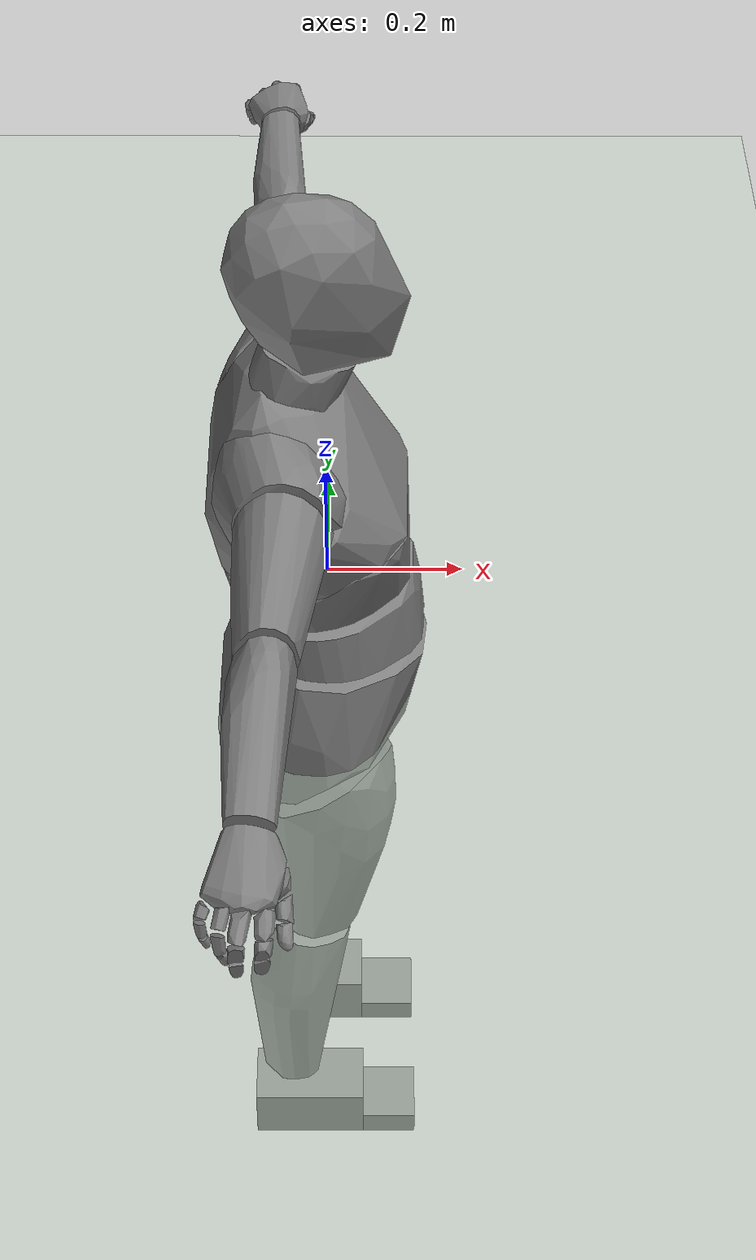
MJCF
<mujoco model="humanoid">
  <compiler coordinate="local"/>
  <statistic extent="2" center="0 0 1"/>
  <option timestep="0.00555"/>
  <default>
    <motor ctrlrange="-1 1" ctrllimited="true"/>
    <geom type="capsule" condim="1" friction="1.0 0.05 0.05" solimp=".9 .99 .003" solref=".015 1"/>
    <joint type="hinge" damping="0.1" stiffness="5" armature=".007" limited="true" solimplimit="0 .99 .01"/>
    <site size=".04" group="3"/>
    <default class="force-torque">
      <site type="box" size=".01 .01 .02" rgba="1 0 0 1"/>
    </default>
    <default class="touch">
      <site type="capsule" rgba="0 0 1 .3"/>
    </default>
  </default>
  <asset>
    <texture type="skybox" builtin="gradient" rgb1=".4 .5 .6" rgb2="0 0 0" width="100" height="100"/>
    <texture builtin="flat" height="1278" mark="cross" markrgb="1 1 1" name="texgeom" random="0.01" rgb1="0.8 0.6 0.4" rgb2="0.8 0.6 0.4" type="cube" width="127"/>
    <texture builtin="checker" height="100" name="texplane" rgb1="0 0 0" rgb2="0.8 0.8 0.8" type="2d" width="100"/>
    <material name="MatPlane" reflectance="0.5" shininess="1" specular="1" texrepeat="60 60" texture="texplane"/>
    <material name="geom" texture="texgeom" texuniform="true"/>
    <mesh file="c151690e-1482-4e43-a277-f6bdd240d634/geom/Pelvis.stl" name="Pelvis_mesh"/>
    <mesh file="c151690e-1482-4e43-a277-f6bdd240d634/geom/L_Hip.stl" name="L_Hip_mesh"/>
    <mesh file="c151690e-1482-4e43-a277-f6bdd240d634/geom/R_Hip.stl" name="R_Hip_mesh"/>
    <mesh file="c151690e-1482-4e43-a277-f6bdd240d634/geom/Torso.stl" name="Torso_mesh"/>
    <mesh file="c151690e-1482-4e43-a277-f6bdd240d634/geom/L_Knee.stl" name="L_Knee_mesh"/>
    <mesh file="c151690e-1482-4e43-a277-f6bdd240d634/geom/R_Knee.stl" name="R_Knee_mesh"/>
    <mesh file="c151690e-1482-4e43-a277-f6bdd240d634/geom/Spine.stl" name="Spine_mesh"/>
    <mesh file="c151690e-1482-4e43-a277-f6bdd240d634/geom/L_Ankle.stl" name="L_Ankle_mesh"/>
    <mesh file="c151690e-1482-4e43-a277-f6bdd240d634/geom/R_Ankle.stl" name="R_Ankle_mesh"/>
    <mesh file="c151690e-1482-4e43-a277-f6bdd240d634/geom/Chest.stl" name="Chest_mesh"/>
    <mesh file="c151690e-1482-4e43-a277-f6bdd240d634/geom/L_Toe.stl" name="L_Toe_mesh"/>
    <mesh file="c151690e-1482-4e43-a277-f6bdd240d634/geom/R_Toe.stl" name="R_Toe_mesh"/>
    <mesh file="c151690e-1482-4e43-a277-f6bdd240d634/geom/Neck.stl" name="Neck_mesh"/>
    <mesh file="c151690e-1482-4e43-a277-f6bdd240d634/geom/L_Thorax.stl" name="L_Thorax_mesh"/>
    <mesh file="c151690e-1482-4e43-a277-f6bdd240d634/geom/R_Thorax.stl" name="R_Thorax_mesh"/>
    <mesh file="c151690e-1482-4e43-a277-f6bdd240d634/geom/Head.stl" name="Head_mesh"/>
    <mesh file="c151690e-1482-4e43-a277-f6bdd240d634/geom/L_Shoulder.stl" name="L_Shoulder_mesh"/>
    <mesh file="c151690e-1482-4e43-a277-f6bdd240d634/geom/R_Shoulder.stl" name="R_Shoulder_mesh"/>
    <mesh file="c151690e-1482-4e43-a277-f6bdd240d634/geom/L_Elbow.stl" name="L_Elbow_mesh"/>
    <mesh file="c151690e-1482-4e43-a277-f6bdd240d634/geom/R_Elbow.stl" name="R_Elbow_mesh"/>
    <mesh file="c151690e-1482-4e43-a277-f6bdd240d634/geom/L_Wrist.stl" name="L_Wrist_mesh"/>
    <mesh file="c151690e-1482-4e43-a277-f6bdd240d634/geom/R_Wrist.stl" name="R_Wrist_mesh"/>
    <mesh file="c151690e-1482-4e43-a277-f6bdd240d634/geom/L_Index1.stl" name="L_Index1_mesh"/>
    <mesh file="c151690e-1482-4e43-a277-f6bdd240d634/geom/L_Index2.stl" name="L_Index2_mesh"/>
    <mesh file="c151690e-1482-4e43-a277-f6bdd240d634/geom/L_Index3.stl" name="L_Index3_mesh"/>
    <mesh file="c151690e-1482-4e43-a277-f6bdd240d634/geom/L_Middle1.stl" name="L_Middle1_mesh"/>
    <mesh file="c151690e-1482-4e43-a277-f6bdd240d634/geom/L_Middle2.stl" name="L_Middle2_mesh"/>
    <mesh file="c151690e-1482-4e43-a277-f6bdd240d634/geom/L_Middle3.stl" name="L_Middle3_mesh"/>
    <mesh file="c151690e-1482-4e43-a277-f6bdd240d634/geom/L_Pinky1.stl" name="L_Pinky1_mesh"/>
    <mesh file="c151690e-1482-4e43-a277-f6bdd240d634/geom/L_Pinky2.stl" name="L_Pinky2_mesh"/>
    <mesh file="c151690e-1482-4e43-a277-f6bdd240d634/geom/L_Pinky3.stl" name="L_Pinky3_mesh"/>
    <mesh file="c151690e-1482-4e43-a277-f6bdd240d634/geom/L_Ring1.stl" name="L_Ring1_mesh"/>
    <mesh file="c151690e-1482-4e43-a277-f6bdd240d634/geom/L_Ring2.stl" name="L_Ring2_mesh"/>
    <mesh file="c151690e-1482-4e43-a277-f6bdd240d634/geom/L_Ring3.stl" name="L_Ring3_mesh"/>
    <mesh file="c151690e-1482-4e43-a277-f6bdd240d634/geom/L_Thumb1.stl" name="L_Thumb1_mesh"/>
    <mesh file="c151690e-1482-4e43-a277-f6bdd240d634/geom/L_Thumb2.stl" name="L_Thumb2_mesh"/>
    <mesh file="c151690e-1482-4e43-a277-f6bdd240d634/geom/L_Thumb3.stl" name="L_Thumb3_mesh"/>
    <mesh file="c151690e-1482-4e43-a277-f6bdd240d634/geom/R_Index1.stl" name="R_Index1_mesh"/>
    <mesh file="c151690e-1482-4e43-a277-f6bdd240d634/geom/R_Index2.stl" name="R_Index2_mesh"/>
    <mesh file="c151690e-1482-4e43-a277-f6bdd240d634/geom/R_Index3.stl" name="R_Index3_mesh"/>
    <mesh file="c151690e-1482-4e43-a277-f6bdd240d634/geom/R_Middle1.stl" name="R_Middle1_mesh"/>
    <mesh file="c151690e-1482-4e43-a277-f6bdd240d634/geom/R_Middle2.stl" name="R_Middle2_mesh"/>
    <mesh file="c151690e-1482-4e43-a277-f6bdd240d634/geom/R_Middle3.stl" name="R_Middle3_mesh"/>
    <mesh file="c151690e-1482-4e43-a277-f6bdd240d634/geom/R_Pinky1.stl" name="R_Pinky1_mesh"/>
    <mesh file="c151690e-1482-4e43-a277-f6bdd240d634/geom/R_Pinky2.stl" name="R_Pinky2_mesh"/>
    <mesh file="c151690e-1482-4e43-a277-f6bdd240d634/geom/R_Pinky3.stl" name="R_Pinky3_mesh"/>
    <mesh file="c151690e-1482-4e43-a277-f6bdd240d634/geom/R_Ring1.stl" name="R_Ring1_mesh"/>
    <mesh file="c151690e-1482-4e43-a277-f6bdd240d634/geom/R_Ring2.stl" name="R_Ring2_mesh"/>
    <mesh file="c151690e-1482-4e43-a277-f6bdd240d634/geom/R_Ring3.stl" name="R_Ring3_mesh"/>
    <mesh file="c151690e-1482-4e43-a277-f6bdd240d634/geom/R_Thumb1.stl" name="R_Thumb1_mesh"/>
    <mesh file="c151690e-1482-4e43-a277-f6bdd240d634/geom/R_Thumb2.stl" name="R_Thumb2_mesh"/>
    <mesh file="c151690e-1482-4e43-a277-f6bdd240d634/geom/R_Thumb3.stl" name="R_Thumb3_mesh"/>
  </asset>
  <worldbody>
    <light cutoff="100" diffuse="1 1 1" dir="-0 0 -1.3" directional="true" exponent="1" pos="0 0 1.3" specular=".1 .1 .1"/>
    <geom conaffinity="1" condim="3" name="floor" pos="0 0 0" rgba="0.8 0.9 0.8 1" size="100 100 .2" type="plane" material="MatPlane"/>
    <body name="Pelvis" pos="-0.0018 -0.2233 0.0282" quat="1.0000 0.0000 0.0000 0.0000">
      <freejoint name="Pelvis"/>
      <geom type="mesh" mesh="Pelvis_mesh" density="1000" contype="1" conaffinity="1"/>
      <body name="L_Hip" pos="-0.0068 0.0695 -0.0914" quat="1.0000 0.0000 0.0000 0.0000">
        <joint name="L_Hip_z" type="hinge" pos="0 0 0" axis="0 0 1" stiffness="500" damping="50" armature="0.02" range="-180.0000 180.0000"/>
        <joint name="L_Hip_y" type="hinge" pos="0 0 0" axis="0 1 0" stiffness="500" damping="50" armature="0.02" range="-180.0000 180.0000"/>
        <joint name="L_Hip_x" type="hinge" pos="0 0 0" axis="1 0 0" stiffness="500" damping="50" armature="0.02" range="-180.0000 180.0000"/>
        <geom type="mesh" mesh="L_Hip_mesh" density="1000" contype="1" conaffinity="1"/>
        <body name="L_Knee" pos="-0.0045 0.0343 -0.3752" quat="1.0000 0.0000 0.0000 0.0000">
          <joint name="L_Knee_z" type="hinge" pos="0 0 0" axis="0 0 1" stiffness="500" damping="50" armature="0.02" range="-180.0000 180.0000"/>
          <joint name="L_Knee_y" type="hinge" pos="0 0 0" axis="0 1 0" stiffness="500" damping="50" armature="0.02" range="-180.0000 180.0000"/>
          <joint name="L_Knee_x" type="hinge" pos="0 0 0" axis="1 0 0" stiffness="500" damping="50" armature="0.02" range="-180.0000 180.0000"/>
          <geom type="mesh" mesh="L_Knee_mesh" density="1000" contype="1" conaffinity="1"/>
          <body name="L_Ankle" pos="-0.0437 -0.0136 -0.398" quat="1.0000 0.0000 0.0000 0.0000">
            <joint name="L_Ankle_z" type="hinge" pos="0 0 0" axis="0 0 1" stiffness="400" damping="40" armature="0.01" range="-180.0000 180.0000"/>
            <joint name="L_Ankle_y" type="hinge" pos="0 0 0" axis="0 1 0" stiffness="400" damping="40" armature="0.01" range="-180.0000 180.0000"/>
            <joint name="L_Ankle_x" type="hinge" pos="0 0 0" axis="1 0 0" stiffness="400" damping="40" armature="0.01" range="-180.0000 180.0000"/>
            <geom density="449.07151" type="box" pos="0.0242 0.0233 -0.0239" size="0.085 0.0483 0.0464" quat="1.0000 0.0000 0.0000 0.0000"/>
            <body name="L_Toe" pos="0.1193 0.0264 -0.0558" quat="1.0000 0.0000 0.0000 0.0000">
              <joint name="L_Toe_z" type="hinge" pos="0 0 0" axis="0 0 1" stiffness="200" damping="20" armature="0.02" range="-180.0000 180.0000"/>
              <joint name="L_Toe_y" type="hinge" pos="0 0 0" axis="0 1 0" stiffness="200" damping="20" armature="0.02" range="-180.0000 180.0000"/>
              <joint name="L_Toe_x" type="hinge" pos="0 0 0" axis="1 0 0" stiffness="200" damping="20" armature="0.02" range="-180.0000 180.0000"/>
              <geom density="423.206891" type="box" pos="0.0248 -0.0030 0.0055" size="0.0496 0.0478 0.02" quat="1.0000 0.0000 0.0000 0.0000"/>
            </body>
          </body>
        </body>
      </body>
      <body name="R_Hip" pos="-0.0043 -0.0677 -0.0905" quat="1.0000 0.0000 0.0000 0.0000">
        <joint name="R_Hip_z" type="hinge" pos="0 0 0" axis="0 0 1" stiffness="500" damping="50" armature="0.02" range="-180.0000 180.0000"/>
        <joint name="R_Hip_y" type="hinge" pos="0 0 0" axis="0 1 0" stiffness="500" damping="50" armature="0.02" range="-180.0000 180.0000"/>
        <joint name="R_Hip_x" type="hinge" pos="0 0 0" axis="1 0 0" stiffness="500" damping="50" armature="0.02" range="-180.0000 180.0000"/>
        <geom type="mesh" mesh="R_Hip_mesh" density="1000" contype="1" conaffinity="1"/>
        <body name="R_Knee" pos="-0.0089 -0.0383 -0.3826" quat="1.0000 0.0000 0.0000 0.0000">
          <joint name="R_Knee_z" type="hinge" pos="0 0 0" axis="0 0 1" stiffness="500" damping="50" armature="0.02" range="-180.0000 180.0000"/>
          <joint name="R_Knee_y" type="hinge" pos="0 0 0" axis="0 1 0" stiffness="500" damping="50" armature="0.02" range="-180.0000 180.0000"/>
          <joint name="R_Knee_x" type="hinge" pos="0 0 0" axis="1 0 0" stiffness="500" damping="50" armature="0.02" range="-180.0000 180.0000"/>
          <geom type="mesh" mesh="R_Knee_mesh" density="1000" contype="1" conaffinity="1"/>
          <body name="R_Ankle" pos="-0.0423 0.0158 -0.3984" quat="1.0000 0.0000 0.0000 0.0000">
            <joint name="R_Ankle_z" type="hinge" pos="0 0 0" axis="0 0 1" stiffness="400" damping="40" armature="0.01" range="-180.0000 180.0000"/>
            <joint name="R_Ankle_y" type="hinge" pos="0 0 0" axis="0 1 0" stiffness="400" damping="40" armature="0.01" range="-180.0000 180.0000"/>
            <joint name="R_Ankle_x" type="hinge" pos="0 0 0" axis="1 0 0" stiffness="400" damping="40" armature="0.01" range="-180.0000 180.0000"/>
            <geom density="434.701474" type="box" pos="0.0256 -0.0212 -0.0174" size="0.0865 0.0483 0.0478" quat="1.0000 0.0000 0.0000 0.0000"/>
            <body name="R_Toe" pos="0.1233 -0.0254 -0.0481" quat="1.0000 0.0000 0.0000 0.0000">
              <joint name="R_Toe_z" type="hinge" pos="0 0 0" axis="0 0 1" stiffness="200" damping="20" armature="0.02" range="-180.0000 180.0000"/>
              <joint name="R_Toe_y" type="hinge" pos="0 0 0" axis="0 1 0" stiffness="200" damping="20" armature="0.02" range="-180.0000 180.0000"/>
              <joint name="R_Toe_x" type="hinge" pos="0 0 0" axis="1 0 0" stiffness="200" damping="20" armature="0.02" range="-180.0000 180.0000"/>
              <geom density="407.383947" type="box" pos="0.0227 0.0042 0.0045" size="0.0493 0.0479 0.0216" quat="1.0000 0.0000 0.0000 0.0000"/>
            </body>
          </body>
        </body>
      </body>
      <body name="Torso" pos="-0.0267 -0.0025 0.109" quat="1.0000 0.0000 0.0000 0.0000">
        <joint name="Torso_z" type="hinge" pos="0 0 0" axis="0 0 1" stiffness="1000" damping="100" armature="0.02" range="-180.0000 180.0000"/>
        <joint name="Torso_y" type="hinge" pos="0 0 0" axis="0 1 0" stiffness="1000" damping="100" armature="0.02" range="-180.0000 180.0000"/>
        <joint name="Torso_x" type="hinge" pos="0 0 0" axis="1 0 0" stiffness="1000" damping="100" armature="0.02" range="-180.0000 180.0000"/>
        <geom type="mesh" mesh="Torso_mesh" density="1000" contype="1" conaffinity="1"/>
        <body name="Spine" pos="0.0011 0.0055 0.1352" quat="1.0000 0.0000 0.0000 0.0000">
          <joint name="Spine_z" type="hinge" pos="0 0 0" axis="0 0 1" stiffness="1000" damping="100" armature="0.02" range="-180.0000 180.0000"/>
          <joint name="Spine_y" type="hinge" pos="0 0 0" axis="0 1 0" stiffness="1000" damping="100" armature="0.02" range="-180.0000 180.0000"/>
          <joint name="Spine_x" type="hinge" pos="0 0 0" axis="1 0 0" stiffness="1000" damping="100" armature="0.02" range="-180.0000 180.0000"/>
          <geom type="mesh" mesh="Spine_mesh" density="1000" contype="1" conaffinity="1"/>
          <body name="Chest" pos="0.0254 0.0015 0.0529" quat="1.0000 0.0000 0.0000 0.0000">
            <joint name="Chest_z" type="hinge" pos="0 0 0" axis="0 0 1" stiffness="1000" damping="100" armature="0.02" range="-180.0000 180.0000"/>
            <joint name="Chest_y" type="hinge" pos="0 0 0" axis="0 1 0" stiffness="1000" damping="100" armature="0.02" range="-180.0000 180.0000"/>
            <joint name="Chest_x" type="hinge" pos="0 0 0" axis="1 0 0" stiffness="1000" damping="100" armature="0.02" range="-180.0000 180.0000"/>
            <geom type="mesh" mesh="Chest_mesh" density="1000" contype="1" conaffinity="1"/>
            <body name="Neck" pos="-0.0429 -0.0028 0.2139" quat="1.0000 0.0000 0.0000 0.0000">
              <joint name="Neck_z" type="hinge" pos="0 0 0" axis="0 0 1" stiffness="100" damping="10" armature="0.02" range="-180.0000 180.0000"/>
              <joint name="Neck_y" type="hinge" pos="0 0 0" axis="0 1 0" stiffness="100" damping="10" armature="0.02" range="-180.0000 180.0000"/>
              <joint name="Neck_x" type="hinge" pos="0 0 0" axis="1 0 0" stiffness="100" damping="10" armature="0.02" range="-180.0000 180.0000"/>
              <geom type="mesh" mesh="Neck_mesh" density="1000" contype="1" conaffinity="1"/>
              <body name="Head" pos="0.0513 0.0052 0.065" quat="1.0000 0.0000 0.0000 0.0000">
                <joint name="Head_z" type="hinge" pos="0 0 0" axis="0 0 1" stiffness="100" damping="10" armature="0.02" range="-180.0000 180.0000"/>
                <joint name="Head_y" type="hinge" pos="0 0 0" axis="0 1 0" stiffness="100" damping="10" armature="0.02" range="-180.0000 180.0000"/>
                <joint name="Head_x" type="hinge" pos="0 0 0" axis="1 0 0" stiffness="100" damping="10" armature="0.02" range="-180.0000 180.0000"/>
                <geom type="mesh" mesh="Head_mesh" density="1000" contype="1" conaffinity="1"/>
              </body>
            </body>
            <body name="L_Thorax" pos="-0.0341 0.0788 0.1217" quat="1.0000 0.0000 0.0000 0.0000">
              <joint name="L_Thorax_z" type="hinge" pos="0 0 0" axis="0 0 1" stiffness="400" damping="40" armature="0.02" range="-180.0000 180.0000"/>
              <joint name="L_Thorax_y" type="hinge" pos="0 0 0" axis="0 1 0" stiffness="400" damping="40" armature="0.02" range="-180.0000 180.0000"/>
              <joint name="L_Thorax_x" type="hinge" pos="0 0 0" axis="1 0 0" stiffness="400" damping="40" armature="0.02" range="-180.0000 180.0000"/>
              <geom type="mesh" mesh="L_Thorax_mesh" density="1000" contype="1" conaffinity="1"/>
              <body name="L_Shoulder" pos="-0.0089 0.091 0.0305" quat="1.0000 0.0000 0.0000 0.0000">
                <joint name="L_Shoulder_z" type="hinge" pos="0 0 0" axis="0 0 1" stiffness="400" damping="40" armature="0.02" range="-180.0000 180.0000"/>
                <joint name="L_Shoulder_y" type="hinge" pos="0 0 0" axis="0 1 0" stiffness="400" damping="40" armature="0.02" range="-180.0000 180.0000"/>
                <joint name="L_Shoulder_x" type="hinge" pos="0 0 0" axis="1 0 0" stiffness="400" damping="40" armature="0.02" range="-180.0000 180.0000"/>
                <geom type="mesh" mesh="L_Shoulder_mesh" density="1000" contype="1" conaffinity="1"/>
                <body name="L_Elbow" pos="-0.0275 0.2596 -0.0128" quat="1.0000 0.0000 0.0000 0.0000">
                  <joint name="L_Elbow_z" type="hinge" pos="0 0 0" axis="0 0 1" stiffness="300" damping="30" armature="0.02" range="-720.0000 720.0000"/>
                  <joint name="L_Elbow_y" type="hinge" pos="0 0 0" axis="0 1 0" stiffness="300" damping="30" armature="0.02" range="-720.0000 720.0000"/>
                  <joint name="L_Elbow_x" type="hinge" pos="0 0 0" axis="1 0 0" stiffness="300" damping="30" armature="0.02" range="-720.0000 720.0000"/>
                  <geom type="mesh" mesh="L_Elbow_mesh" density="1000" contype="1" conaffinity="1"/>
                  <body name="L_Wrist" pos="-0.0012 0.2492 0.009" quat="1.0000 0.0000 0.0000 0.0000">
                    <joint name="L_Wrist_z" type="hinge" pos="0 0 0" axis="0 0 1" stiffness="100" damping="10" armature="0.02" range="-180.0000 180.0000"/>
                    <joint name="L_Wrist_y" type="hinge" pos="0 0 0" axis="0 1 0" stiffness="100" damping="10" armature="0.02" range="-180.0000 180.0000"/>
                    <joint name="L_Wrist_x" type="hinge" pos="0 0 0" axis="1 0 0" stiffness="100" damping="10" armature="0.02" range="-180.0000 180.0000"/>
                    <geom type="mesh" mesh="L_Wrist_mesh" density="1000" contype="1" conaffinity="1"/>
                    <body name="L_Index1" pos="0.0215 0.1025 -0.009" quat="1.0000 0.0000 0.0000 0.0000">
                      <joint name="L_Index1_z" type="hinge" pos="0 0 0" axis="0 0 1" stiffness="100" damping="10" armature="0.02" range="-180.0000 180.0000"/>
                      <joint name="L_Index1_y" type="hinge" pos="0 0 0" axis="0 1 0" stiffness="100" damping="10" armature="0.02" range="-180.0000 180.0000"/>
                      <joint name="L_Index1_x" type="hinge" pos="0 0 0" axis="1 0 0" stiffness="100" damping="10" armature="0.02" range="-180.0000 180.0000"/>
                      <geom type="mesh" mesh="L_Index1_mesh" density="1000" contype="1" conaffinity="1"/>
                      <body name="L_Index2" pos="0.0015 0.0303 -0.0105" quat="1.0000 0.0000 0.0000 0.0000">
                        <joint name="L_Index2_z" type="hinge" pos="0 0 0" axis="0 0 1" stiffness="100" damping="10" armature="0.02" range="-180.0000 180.0000"/>
                        <joint name="L_Index2_y" type="hinge" pos="0 0 0" axis="0 1 0" stiffness="100" damping="10" armature="0.02" range="-180.0000 180.0000"/>
                        <joint name="L_Index2_x" type="hinge" pos="0 0 0" axis="1 0 0" stiffness="100" damping="10" armature="0.02" range="-180.0000 180.0000"/>
                        <geom type="mesh" mesh="L_Index2_mesh" density="1000" contype="1" conaffinity="1"/>
                        <body name="L_Index3" pos="-0.0017 0.007 -0.0213" quat="1.0000 0.0000 0.0000 0.0000">
                          <joint name="L_Index3_z" type="hinge" pos="0 0 0" axis="0 0 1" stiffness="100" damping="10" armature="0.02" range="-180.0000 180.0000"/>
                          <joint name="L_Index3_y" type="hinge" pos="0 0 0" axis="0 1 0" stiffness="100" damping="10" armature="0.02" range="-180.0000 180.0000"/>
                          <joint name="L_Index3_x" type="hinge" pos="0 0 0" axis="1 0 0" stiffness="100" damping="10" armature="0.02" range="-180.0000 180.0000"/>
                          <geom type="mesh" mesh="L_Index3_mesh" density="1000" contype="1" conaffinity="1"/>
                        </body>
                      </body>
                    </body>
                    <body name="L_Middle1" pos="-0.0013 0.1098 -0.0061" quat="1.0000 0.0000 0.0000 0.0000">
                      <joint name="L_Middle1_z" type="hinge" pos="0 0 0" axis="0 0 1" stiffness="100" damping="10" armature="0.02" range="-180.0000 180.0000"/>
                      <joint name="L_Middle1_y" type="hinge" pos="0 0 0" axis="0 1 0" stiffness="100" damping="10" armature="0.02" range="-180.0000 180.0000"/>
                      <joint name="L_Middle1_x" type="hinge" pos="0 0 0" axis="1 0 0" stiffness="100" damping="10" armature="0.02" range="-180.0000 180.0000"/>
                      <geom type="mesh" mesh="L_Middle1_mesh" density="1000" contype="1" conaffinity="1"/>
                      <body name="L_Middle2" pos="-0.0047 0.0266 -0.0148" quat="1.0000 0.0000 0.0000 0.0000">
                        <joint name="L_Middle2_z" type="hinge" pos="0 0 0" axis="0 0 1" stiffness="100" damping="10" armature="0.02" range="-180.0000 180.0000"/>
                        <joint name="L_Middle2_y" type="hinge" pos="0 0 0" axis="0 1 0" stiffness="100" damping="10" armature="0.02" range="-180.0000 180.0000"/>
                        <joint name="L_Middle2_x" type="hinge" pos="0 0 0" axis="1 0 0" stiffness="100" damping="10" armature="0.02" range="-180.0000 180.0000"/>
                        <geom type="mesh" mesh="L_Middle2_mesh" density="1000" contype="1" conaffinity="1"/>
                        <body name="L_Middle3" pos="-0.0014 0.0057 -0.0231" quat="1.0000 0.0000 0.0000 0.0000">
                          <joint name="L_Middle3_z" type="hinge" pos="0 0 0" axis="0 0 1" stiffness="100" damping="10" armature="0.02" range="-180.0000 180.0000"/>
                          <joint name="L_Middle3_y" type="hinge" pos="0 0 0" axis="0 1 0" stiffness="100" damping="10" armature="0.02" range="-180.0000 180.0000"/>
                          <joint name="L_Middle3_x" type="hinge" pos="0 0 0" axis="1 0 0" stiffness="100" damping="10" armature="0.02" range="-180.0000 180.0000"/>
                          <geom type="mesh" mesh="L_Middle3_mesh" density="1000" contype="1" conaffinity="1"/>
                        </body>
                      </body>
                    </body>
                    <body name="L_Pinky1" pos="-0.0406 0.0846 -0.0138" quat="1.0000 0.0000 0.0000 0.0000">
                      <joint name="L_Pinky1_z" type="hinge" pos="0 0 0" axis="0 0 1" stiffness="100" damping="10" armature="0.02" range="-180.0000 180.0000"/>
                      <joint name="L_Pinky1_y" type="hinge" pos="0 0 0" axis="0 1 0" stiffness="100" damping="10" armature="0.02" range="-180.0000 180.0000"/>
                      <joint name="L_Pinky1_x" type="hinge" pos="0 0 0" axis="1 0 0" stiffness="100" damping="10" armature="0.02" range="-180.0000 180.0000"/>
                      <geom type="mesh" mesh="L_Pinky1_mesh" density="1000" contype="1" conaffinity="1"/>
                      <body name="L_Pinky2" pos="-0.0045 0.0128 -0.0135" quat="1.0000 0.0000 0.0000 0.0000">
                        <joint name="L_Pinky2_z" type="hinge" pos="0 0 0" axis="0 0 1" stiffness="100" damping="10" armature="0.02" range="-180.0000 180.0000"/>
                        <joint name="L_Pinky2_y" type="hinge" pos="0 0 0" axis="0 1 0" stiffness="100" damping="10" armature="0.02" range="-180.0000 180.0000"/>
                        <joint name="L_Pinky2_x" type="hinge" pos="0 0 0" axis="1 0 0" stiffness="100" damping="10" armature="0.02" range="-180.0000 180.0000"/>
                        <geom type="mesh" mesh="L_Pinky2_mesh" density="1000" contype="1" conaffinity="1"/>
                        <body name="L_Pinky3" pos="0.0011 0.0044 -0.0183" quat="1.0000 0.0000 0.0000 0.0000">
                          <joint name="L_Pinky3_z" type="hinge" pos="0 0 0" axis="0 0 1" stiffness="100" damping="10" armature="0.02" range="-180.0000 180.0000"/>
                          <joint name="L_Pinky3_y" type="hinge" pos="0 0 0" axis="0 1 0" stiffness="100" damping="10" armature="0.02" range="-180.0000 180.0000"/>
                          <joint name="L_Pinky3_x" type="hinge" pos="0 0 0" axis="1 0 0" stiffness="100" damping="10" armature="0.02" range="-180.0000 180.0000"/>
                          <geom type="mesh" mesh="L_Pinky3_mesh" density="1000" contype="1" conaffinity="1"/>
                        </body>
                      </body>
                    </body>
                    <body name="L_Ring1" pos="-0.0243 0.0978 -0.0087" quat="1.0000 0.0000 0.0000 0.0000">
                      <joint name="L_Ring1_z" type="hinge" pos="0 0 0" axis="0 0 1" stiffness="100" damping="10" armature="0.02" range="-180.0000 180.0000"/>
                      <joint name="L_Ring1_y" type="hinge" pos="0 0 0" axis="0 1 0" stiffness="100" damping="10" armature="0.02" range="-180.0000 180.0000"/>
                      <joint name="L_Ring1_x" type="hinge" pos="0 0 0" axis="1 0 0" stiffness="100" damping="10" armature="0.02" range="-180.0000 180.0000"/>
                      <geom type="mesh" mesh="L_Ring1_mesh" density="1000" contype="1" conaffinity="1"/>
                      <body name="L_Ring2" pos="-0.0011 0.0235 -0.0157" quat="1.0000 0.0000 0.0000 0.0000">
                        <joint name="L_Ring2_z" type="hinge" pos="0 0 0" axis="0 0 1" stiffness="100" damping="10" armature="0.02" range="-180.0000 180.0000"/>
                        <joint name="L_Ring2_y" type="hinge" pos="0 0 0" axis="0 1 0" stiffness="100" damping="10" armature="0.02" range="-180.0000 180.0000"/>
                        <joint name="L_Ring2_x" type="hinge" pos="0 0 0" axis="1 0 0" stiffness="100" damping="10" armature="0.02" range="-180.0000 180.0000"/>
                        <geom type="mesh" mesh="L_Ring2_mesh" density="1000" contype="1" conaffinity="1"/>
                        <body name="L_Ring3" pos="0.0013 0.0044 -0.0232" quat="1.0000 0.0000 0.0000 0.0000">
                          <joint name="L_Ring3_z" type="hinge" pos="0 0 0" axis="0 0 1" stiffness="100" damping="10" armature="0.02" range="-180.0000 180.0000"/>
                          <joint name="L_Ring3_y" type="hinge" pos="0 0 0" axis="0 1 0" stiffness="100" damping="10" armature="0.02" range="-180.0000 180.0000"/>
                          <joint name="L_Ring3_x" type="hinge" pos="0 0 0" axis="1 0 0" stiffness="100" damping="10" armature="0.02" range="-180.0000 180.0000"/>
                          <geom type="mesh" mesh="L_Ring3_mesh" density="1000" contype="1" conaffinity="1"/>
                        </body>
                      </body>
                    </body>
                    <body name="L_Thumb1" pos="0.0265 0.0419 -0.0199" quat="1.0000 0.0000 0.0000 0.0000">
                      <joint name="L_Thumb1_z" type="hinge" pos="0 0 0" axis="0 0 1" stiffness="100" damping="10" armature="0.02" range="-180.0000 180.0000"/>
                      <joint name="L_Thumb1_y" type="hinge" pos="0 0 0" axis="0 1 0" stiffness="100" damping="10" armature="0.02" range="-180.0000 180.0000"/>
                      <joint name="L_Thumb1_x" type="hinge" pos="0 0 0" axis="1 0 0" stiffness="100" damping="10" armature="0.02" range="-180.0000 180.0000"/>
                      <geom type="mesh" mesh="L_Thumb1_mesh" density="1000" contype="1" conaffinity="1"/>
                      <body name="L_Thumb2" pos="0.0115 0.0223 -0.0165" quat="1.0000 0.0000 0.0000 0.0000">
                        <joint name="L_Thumb2_z" type="hinge" pos="0 0 0" axis="0 0 1" stiffness="100" damping="10" armature="0.02" range="-180.0000 180.0000"/>
                        <joint name="L_Thumb2_y" type="hinge" pos="0 0 0" axis="0 1 0" stiffness="100" damping="10" armature="0.02" range="-180.0000 180.0000"/>
                        <joint name="L_Thumb2_x" type="hinge" pos="0 0 0" axis="1 0 0" stiffness="100" damping="10" armature="0.02" range="-180.0000 180.0000"/>
                        <geom type="mesh" mesh="L_Thumb2_mesh" density="1000" contype="1" conaffinity="1"/>
                        <body name="L_Thumb3" pos="0.0063 0.0245 -0.0066" quat="1.0000 0.0000 0.0000 0.0000">
                          <joint name="L_Thumb3_z" type="hinge" pos="0 0 0" axis="0 0 1" stiffness="100" damping="10" armature="0.02" range="-180.0000 180.0000"/>
                          <joint name="L_Thumb3_y" type="hinge" pos="0 0 0" axis="0 1 0" stiffness="100" damping="10" armature="0.02" range="-180.0000 180.0000"/>
                          <joint name="L_Thumb3_x" type="hinge" pos="0 0 0" axis="1 0 0" stiffness="100" damping="10" armature="0.02" range="-180.0000 180.0000"/>
                          <geom type="mesh" mesh="L_Thumb3_mesh" density="1000" contype="1" conaffinity="1"/>
                        </body>
                      </body>
                    </body>
                  </body>
                </body>
              </body>
            </body>
            <body name="R_Thorax" pos="-0.0386 -0.0818 0.1188" quat="1.0000 0.0000 0.0000 0.0000">
              <joint name="R_Thorax_z" type="hinge" pos="0 0 0" axis="0 0 1" stiffness="400" damping="40" armature="0.02" range="-180.0000 180.0000"/>
              <joint name="R_Thorax_y" type="hinge" pos="0 0 0" axis="0 1 0" stiffness="400" damping="40" armature="0.02" range="-180.0000 180.0000"/>
              <joint name="R_Thorax_x" type="hinge" pos="0 0 0" axis="1 0 0" stiffness="400" damping="40" armature="0.02" range="-180.0000 180.0000"/>
              <geom type="mesh" mesh="R_Thorax_mesh" density="1000" contype="1" conaffinity="1"/>
              <body name="R_Shoulder" pos="-0.0091 -0.096 0.0326" quat="1.0000 0.0000 0.0000 0.0000">
                <joint name="R_Shoulder_z" type="hinge" pos="0 0 0" axis="0 0 1" stiffness="400" damping="40" armature="0.02" range="-180.0000 180.0000"/>
                <joint name="R_Shoulder_y" type="hinge" pos="0 0 0" axis="0 1 0" stiffness="400" damping="40" armature="0.02" range="-180.0000 180.0000"/>
                <joint name="R_Shoulder_x" type="hinge" pos="0 0 0" axis="1 0 0" stiffness="400" damping="40" armature="0.02" range="-180.0000 180.0000"/>
                <geom type="mesh" mesh="R_Shoulder_mesh" density="1000" contype="1" conaffinity="1"/>
                <body name="R_Elbow" pos="-0.0214 -0.2537 -0.0133" quat="1.0000 0.0000 0.0000 0.0000">
                  <joint name="R_Elbow_z" type="hinge" pos="0 0 0" axis="0 0 1" stiffness="300" damping="30" armature="0.02" range="-720.0000 720.0000"/>
                  <joint name="R_Elbow_y" type="hinge" pos="0 0 0" axis="0 1 0" stiffness="300" damping="30" armature="0.02" range="-720.0000 720.0000"/>
                  <joint name="R_Elbow_x" type="hinge" pos="0 0 0" axis="1 0 0" stiffness="300" damping="30" armature="0.02" range="-720.0000 720.0000"/>
                  <geom type="mesh" mesh="R_Elbow_mesh" density="1000" contype="1" conaffinity="1"/>
                  <body name="R_Wrist" pos="-0.0056 -0.2553 0.0078" quat="1.0000 0.0000 0.0000 0.0000">
                    <joint name="R_Wrist_z" type="hinge" pos="0 0 0" axis="0 0 1" stiffness="100" damping="10" armature="0.02" range="-180.0000 180.0000"/>
                    <joint name="R_Wrist_y" type="hinge" pos="0 0 0" axis="0 1 0" stiffness="100" damping="10" armature="0.02" range="-180.0000 180.0000"/>
                    <joint name="R_Wrist_x" type="hinge" pos="0 0 0" axis="1 0 0" stiffness="100" damping="10" armature="0.02" range="-180.0000 180.0000"/>
                    <geom type="mesh" mesh="R_Wrist_mesh" density="1000" contype="1" conaffinity="1"/>
                    <body name="R_Index1" pos="0.0246 -0.0993 -0.0086" quat="1.0000 0.0000 0.0000 0.0000">
                      <joint name="R_Index1_z" type="hinge" pos="0 0 0" axis="0 0 1" stiffness="100" damping="10" armature="0.02" range="-180.0000 180.0000"/>
                      <joint name="R_Index1_y" type="hinge" pos="0 0 0" axis="0 1 0" stiffness="100" damping="10" armature="0.02" range="-180.0000 180.0000"/>
                      <joint name="R_Index1_x" type="hinge" pos="0 0 0" axis="1 0 0" stiffness="100" damping="10" armature="0.02" range="-180.0000 180.0000"/>
                      <geom type="mesh" mesh="R_Index1_mesh" density="1000" contype="1" conaffinity="1"/>
                      <body name="R_Index2" pos="0.0006 -0.0306 -0.0106" quat="1.0000 0.0000 0.0000 0.0000">
                        <joint name="R_Index2_z" type="hinge" pos="0 0 0" axis="0 0 1" stiffness="100" damping="10" armature="0.02" range="-180.0000 180.0000"/>
                        <joint name="R_Index2_y" type="hinge" pos="0 0 0" axis="0 1 0" stiffness="100" damping="10" armature="0.02" range="-180.0000 180.0000"/>
                        <joint name="R_Index2_x" type="hinge" pos="0 0 0" axis="1 0 0" stiffness="100" damping="10" armature="0.02" range="-180.0000 180.0000"/>
                        <geom type="mesh" mesh="R_Index2_mesh" density="1000" contype="1" conaffinity="1"/>
                        <body name="R_Index3" pos="-0.0028 -0.007 -0.0211" quat="1.0000 0.0000 0.0000 0.0000">
                          <joint name="R_Index3_z" type="hinge" pos="0 0 0" axis="0 0 1" stiffness="100" damping="10" armature="0.02" range="-180.0000 180.0000"/>
                          <joint name="R_Index3_y" type="hinge" pos="0 0 0" axis="0 1 0" stiffness="100" damping="10" armature="0.02" range="-180.0000 180.0000"/>
                          <joint name="R_Index3_x" type="hinge" pos="0 0 0" axis="1 0 0" stiffness="100" damping="10" armature="0.02" range="-180.0000 180.0000"/>
                          <geom type="mesh" mesh="R_Index3_mesh" density="1000" contype="1" conaffinity="1"/>
                        </body>
                      </body>
                    </body>
                    <body name="R_Middle1" pos="0.0008 -0.1072 -0.0055" quat="1.0000 0.0000 0.0000 0.0000">
                      <joint name="R_Middle1_z" type="hinge" pos="0 0 0" axis="0 0 1" stiffness="100" damping="10" armature="0.02" range="-180.0000 180.0000"/>
                      <joint name="R_Middle1_y" type="hinge" pos="0 0 0" axis="0 1 0" stiffness="100" damping="10" armature="0.02" range="-180.0000 180.0000"/>
                      <joint name="R_Middle1_x" type="hinge" pos="0 0 0" axis="1 0 0" stiffness="100" damping="10" armature="0.02" range="-180.0000 180.0000"/>
                      <geom type="mesh" mesh="R_Middle1_mesh" density="1000" contype="1" conaffinity="1"/>
                      <body name="R_Middle2" pos="-0.0049 -0.0266 -0.0145" quat="1.0000 0.0000 0.0000 0.0000">
                        <joint name="R_Middle2_z" type="hinge" pos="0 0 0" axis="0 0 1" stiffness="100" damping="10" armature="0.02" range="-180.0000 180.0000"/>
                        <joint name="R_Middle2_y" type="hinge" pos="0 0 0" axis="0 1 0" stiffness="100" damping="10" armature="0.02" range="-180.0000 180.0000"/>
                        <joint name="R_Middle2_x" type="hinge" pos="0 0 0" axis="1 0 0" stiffness="100" damping="10" armature="0.02" range="-180.0000 180.0000"/>
                        <geom type="mesh" mesh="R_Middle2_mesh" density="1000" contype="1" conaffinity="1"/>
                        <body name="R_Middle3" pos="-0.0019 -0.0055 -0.0228" quat="1.0000 0.0000 0.0000 0.0000">
                          <joint name="R_Middle3_z" type="hinge" pos="0 0 0" axis="0 0 1" stiffness="100" damping="10" armature="0.02" range="-180.0000 180.0000"/>
                          <joint name="R_Middle3_y" type="hinge" pos="0 0 0" axis="0 1 0" stiffness="100" damping="10" armature="0.02" range="-180.0000 180.0000"/>
                          <joint name="R_Middle3_x" type="hinge" pos="0 0 0" axis="1 0 0" stiffness="100" damping="10" armature="0.02" range="-180.0000 180.0000"/>
                          <geom type="mesh" mesh="R_Middle3_mesh" density="1000" contype="1" conaffinity="1"/>
                        </body>
                      </body>
                    </body>
                    <body name="R_Pinky1" pos="-0.0394 -0.083 -0.0136" quat="1.0000 0.0000 0.0000 0.0000">
                      <joint name="R_Pinky1_z" type="hinge" pos="0 0 0" axis="0 0 1" stiffness="100" damping="10" armature="0.02" range="-180.0000 180.0000"/>
                      <joint name="R_Pinky1_y" type="hinge" pos="0 0 0" axis="0 1 0" stiffness="100" damping="10" armature="0.02" range="-180.0000 180.0000"/>
                      <joint name="R_Pinky1_x" type="hinge" pos="0 0 0" axis="1 0 0" stiffness="100" damping="10" armature="0.02" range="-180.0000 180.0000"/>
                      <geom type="mesh" mesh="R_Pinky1_mesh" density="1000" contype="1" conaffinity="1"/>
                      <body name="R_Pinky2" pos="-0.0048 -0.0127 -0.0135" quat="1.0000 0.0000 0.0000 0.0000">
                        <joint name="R_Pinky2_z" type="hinge" pos="0 0 0" axis="0 0 1" stiffness="100" damping="10" armature="0.02" range="-180.0000 180.0000"/>
                        <joint name="R_Pinky2_y" type="hinge" pos="0 0 0" axis="0 1 0" stiffness="100" damping="10" armature="0.02" range="-180.0000 180.0000"/>
                        <joint name="R_Pinky2_x" type="hinge" pos="0 0 0" axis="1 0 0" stiffness="100" damping="10" armature="0.02" range="-180.0000 180.0000"/>
                        <geom type="mesh" mesh="R_Pinky2_mesh" density="1000" contype="1" conaffinity="1"/>
                        <body name="R_Pinky3" pos="0.0009 -0.0045 -0.0181" quat="1.0000 0.0000 0.0000 0.0000">
                          <joint name="R_Pinky3_z" type="hinge" pos="0 0 0" axis="0 0 1" stiffness="100" damping="10" armature="0.02" range="-180.0000 180.0000"/>
                          <joint name="R_Pinky3_y" type="hinge" pos="0 0 0" axis="0 1 0" stiffness="100" damping="10" armature="0.02" range="-180.0000 180.0000"/>
                          <joint name="R_Pinky3_x" type="hinge" pos="0 0 0" axis="1 0 0" stiffness="100" damping="10" armature="0.02" range="-180.0000 180.0000"/>
                          <geom type="mesh" mesh="R_Pinky3_mesh" density="1000" contype="1" conaffinity="1"/>
                        </body>
                      </body>
                    </body>
                    <body name="R_Ring1" pos="-0.0229 -0.0958 -0.0083" quat="1.0000 0.0000 0.0000 0.0000">
                      <joint name="R_Ring1_z" type="hinge" pos="0 0 0" axis="0 0 1" stiffness="100" damping="10" armature="0.02" range="-180.0000 180.0000"/>
                      <joint name="R_Ring1_y" type="hinge" pos="0 0 0" axis="0 1 0" stiffness="100" damping="10" armature="0.02" range="-180.0000 180.0000"/>
                      <joint name="R_Ring1_x" type="hinge" pos="0 0 0" axis="1 0 0" stiffness="100" damping="10" armature="0.02" range="-180.0000 180.0000"/>
                      <geom type="mesh" mesh="R_Ring1_mesh" density="1000" contype="1" conaffinity="1"/>
                      <body name="R_Ring2" pos="-0.0013 -0.0233 -0.0155" quat="1.0000 0.0000 0.0000 0.0000">
                        <joint name="R_Ring2_z" type="hinge" pos="0 0 0" axis="0 0 1" stiffness="100" damping="10" armature="0.02" range="-180.0000 180.0000"/>
                        <joint name="R_Ring2_y" type="hinge" pos="0 0 0" axis="0 1 0" stiffness="100" damping="10" armature="0.02" range="-180.0000 180.0000"/>
                        <joint name="R_Ring2_x" type="hinge" pos="0 0 0" axis="1 0 0" stiffness="100" damping="10" armature="0.02" range="-180.0000 180.0000"/>
                        <geom type="mesh" mesh="R_Ring2_mesh" density="1000" contype="1" conaffinity="1"/>
                        <body name="R_Ring3" pos="0.0008 -0.0042 -0.0231" quat="1.0000 0.0000 0.0000 0.0000">
                          <joint name="R_Ring3_z" type="hinge" pos="0 0 0" axis="0 0 1" stiffness="100" damping="10" armature="0.02" range="-180.0000 180.0000"/>
                          <joint name="R_Ring3_y" type="hinge" pos="0 0 0" axis="0 1 0" stiffness="100" damping="10" armature="0.02" range="-180.0000 180.0000"/>
                          <joint name="R_Ring3_x" type="hinge" pos="0 0 0" axis="1 0 0" stiffness="100" damping="10" armature="0.02" range="-180.0000 180.0000"/>
                          <geom type="mesh" mesh="R_Ring3_mesh" density="1000" contype="1" conaffinity="1"/>
                        </body>
                      </body>
                    </body>
                    <body name="R_Thumb1" pos="0.0301 -0.0378 -0.0201" quat="1.0000 0.0000 0.0000 0.0000">
                      <joint name="R_Thumb1_z" type="hinge" pos="0 0 0" axis="0 0 1" stiffness="100" damping="10" armature="0.02" range="-180.0000 180.0000"/>
                      <joint name="R_Thumb1_y" type="hinge" pos="0 0 0" axis="0 1 0" stiffness="100" damping="10" armature="0.02" range="-180.0000 180.0000"/>
                      <joint name="R_Thumb1_x" type="hinge" pos="0 0 0" axis="1 0 0" stiffness="100" damping="10" armature="0.02" range="-180.0000 180.0000"/>
                      <geom type="mesh" mesh="R_Thumb1_mesh" density="1000" contype="1" conaffinity="1"/>
                      <body name="R_Thumb2" pos="0.0111 -0.0219 -0.0173" quat="1.0000 0.0000 0.0000 0.0000">
                        <joint name="R_Thumb2_z" type="hinge" pos="0 0 0" axis="0 0 1" stiffness="100" damping="10" armature="0.02" range="-180.0000 180.0000"/>
                        <joint name="R_Thumb2_y" type="hinge" pos="0 0 0" axis="0 1 0" stiffness="100" damping="10" armature="0.02" range="-180.0000 180.0000"/>
                        <joint name="R_Thumb2_x" type="hinge" pos="0 0 0" axis="1 0 0" stiffness="100" damping="10" armature="0.02" range="-180.0000 180.0000"/>
                        <geom type="mesh" mesh="R_Thumb2_mesh" density="1000" contype="1" conaffinity="1"/>
                        <body name="R_Thumb3" pos="0.0054 -0.0245 -0.0077" quat="1.0000 0.0000 0.0000 0.0000">
                          <joint name="R_Thumb3_z" type="hinge" pos="0 0 0" axis="0 0 1" stiffness="100" damping="10" armature="0.02" range="-180.0000 180.0000"/>
                          <joint name="R_Thumb3_y" type="hinge" pos="0 0 0" axis="0 1 0" stiffness="100" damping="10" armature="0.02" range="-180.0000 180.0000"/>
                          <joint name="R_Thumb3_x" type="hinge" pos="0 0 0" axis="1 0 0" stiffness="100" damping="10" armature="0.02" range="-180.0000 180.0000"/>
                          <geom type="mesh" mesh="R_Thumb3_mesh" density="1000" contype="1" conaffinity="1"/>
                        </body>
                      </body>
                    </body>
                  </body>
                </body>
              </body>
            </body>
          </body>
        </body>
      </body>
    </body>
  </worldbody>
  <actuator>
    <motor name="L_Hip_z" joint="L_Hip_z" gear="1"/>
    <motor name="L_Hip_y" joint="L_Hip_y" gear="1"/>
    <motor name="L_Hip_x" joint="L_Hip_x" gear="1"/>
    <motor name="L_Knee_z" joint="L_Knee_z" gear="1"/>
    <motor name="L_Knee_y" joint="L_Knee_y" gear="1"/>
    <motor name="L_Knee_x" joint="L_Knee_x" gear="1"/>
    <motor name="L_Ankle_z" joint="L_Ankle_z" gear="1"/>
    <motor name="L_Ankle_y" joint="L_Ankle_y" gear="1"/>
    <motor name="L_Ankle_x" joint="L_Ankle_x" gear="1"/>
    <motor name="L_Toe_z" joint="L_Toe_z" gear="1"/>
    <motor name="L_Toe_y" joint="L_Toe_y" gear="1"/>
    <motor name="L_Toe_x" joint="L_Toe_x" gear="1"/>
    <motor name="R_Hip_z" joint="R_Hip_z" gear="1"/>
    <motor name="R_Hip_y" joint="R_Hip_y" gear="1"/>
    <motor name="R_Hip_x" joint="R_Hip_x" gear="1"/>
    <motor name="R_Knee_z" joint="R_Knee_z" gear="1"/>
    <motor name="R_Knee_y" joint="R_Knee_y" gear="1"/>
    <motor name="R_Knee_x" joint="R_Knee_x" gear="1"/>
    <motor name="R_Ankle_z" joint="R_Ankle_z" gear="1"/>
    <motor name="R_Ankle_y" joint="R_Ankle_y" gear="1"/>
    <motor name="R_Ankle_x" joint="R_Ankle_x" gear="1"/>
    <motor name="R_Toe_z" joint="R_Toe_z" gear="1"/>
    <motor name="R_Toe_y" joint="R_Toe_y" gear="1"/>
    <motor name="R_Toe_x" joint="R_Toe_x" gear="1"/>
    <motor name="Torso_z" joint="Torso_z" gear="1"/>
    <motor name="Torso_y" joint="Torso_y" gear="1"/>
    <motor name="Torso_x" joint="Torso_x" gear="1"/>
    <motor name="Spine_z" joint="Spine_z" gear="1"/>
    <motor name="Spine_y" joint="Spine_y" gear="1"/>
    <motor name="Spine_x" joint="Spine_x" gear="1"/>
    <motor name="Chest_z" joint="Chest_z" gear="1"/>
    <motor name="Chest_y" joint="Chest_y" gear="1"/>
    <motor name="Chest_x" joint="Chest_x" gear="1"/>
    <motor name="Neck_z" joint="Neck_z" gear="1"/>
    <motor name="Neck_y" joint="Neck_y" gear="1"/>
    <motor name="Neck_x" joint="Neck_x" gear="1"/>
    <motor name="Head_z" joint="Head_z" gear="1"/>
    <motor name="Head_y" joint="Head_y" gear="1"/>
    <motor name="Head_x" joint="Head_x" gear="1"/>
    <motor name="L_Thorax_z" joint="L_Thorax_z" gear="1"/>
    <motor name="L_Thorax_y" joint="L_Thorax_y" gear="1"/>
    <motor name="L_Thorax_x" joint="L_Thorax_x" gear="1"/>
    <motor name="L_Shoulder_z" joint="L_Shoulder_z" gear="1"/>
    <motor name="L_Shoulder_y" joint="L_Shoulder_y" gear="1"/>
    <motor name="L_Shoulder_x" joint="L_Shoulder_x" gear="1"/>
    <motor name="L_Elbow_z" joint="L_Elbow_z" gear="1"/>
    <motor name="L_Elbow_y" joint="L_Elbow_y" gear="1"/>
    <motor name="L_Elbow_x" joint="L_Elbow_x" gear="1"/>
    <motor name="L_Wrist_z" joint="L_Wrist_z" gear="1"/>
    <motor name="L_Wrist_y" joint="L_Wrist_y" gear="1"/>
    <motor name="L_Wrist_x" joint="L_Wrist_x" gear="1"/>
    <motor name="L_Index1_z" joint="L_Index1_z" gear="1"/>
    <motor name="L_Index1_y" joint="L_Index1_y" gear="1"/>
    <motor name="L_Index1_x" joint="L_Index1_x" gear="1"/>
    <motor name="L_Index2_z" joint="L_Index2_z" gear="1"/>
    <motor name="L_Index2_y" joint="L_Index2_y" gear="1"/>
    <motor name="L_Index2_x" joint="L_Index2_x" gear="1"/>
    <motor name="L_Index3_z" joint="L_Index3_z" gear="1"/>
    <motor name="L_Index3_y" joint="L_Index3_y" gear="1"/>
    <motor name="L_Index3_x" joint="L_Index3_x" gear="1"/>
    <motor name="L_Middle1_z" joint="L_Middle1_z" gear="1"/>
    <motor name="L_Middle1_y" joint="L_Middle1_y" gear="1"/>
    <motor name="L_Middle1_x" joint="L_Middle1_x" gear="1"/>
    <motor name="L_Middle2_z" joint="L_Middle2_z" gear="1"/>
    <motor name="L_Middle2_y" joint="L_Middle2_y" gear="1"/>
    <motor name="L_Middle2_x" joint="L_Middle2_x" gear="1"/>
    <motor name="L_Middle3_z" joint="L_Middle3_z" gear="1"/>
    <motor name="L_Middle3_y" joint="L_Middle3_y" gear="1"/>
    <motor name="L_Middle3_x" joint="L_Middle3_x" gear="1"/>
    <motor name="L_Pinky1_z" joint="L_Pinky1_z" gear="1"/>
    <motor name="L_Pinky1_y" joint="L_Pinky1_y" gear="1"/>
    <motor name="L_Pinky1_x" joint="L_Pinky1_x" gear="1"/>
    <motor name="L_Pinky2_z" joint="L_Pinky2_z" gear="1"/>
    <motor name="L_Pinky2_y" joint="L_Pinky2_y" gear="1"/>
    <motor name="L_Pinky2_x" joint="L_Pinky2_x" gear="1"/>
    <motor name="L_Pinky3_z" joint="L_Pinky3_z" gear="1"/>
    <motor name="L_Pinky3_y" joint="L_Pinky3_y" gear="1"/>
    <motor name="L_Pinky3_x" joint="L_Pinky3_x" gear="1"/>
    <motor name="L_Ring1_z" joint="L_Ring1_z" gear="1"/>
    <motor name="L_Ring1_y" joint="L_Ring1_y" gear="1"/>
    <motor name="L_Ring1_x" joint="L_Ring1_x" gear="1"/>
    <motor name="L_Ring2_z" joint="L_Ring2_z" gear="1"/>
    <motor name="L_Ring2_y" joint="L_Ring2_y" gear="1"/>
    <motor name="L_Ring2_x" joint="L_Ring2_x" gear="1"/>
    <motor name="L_Ring3_z" joint="L_Ring3_z" gear="1"/>
    <motor name="L_Ring3_y" joint="L_Ring3_y" gear="1"/>
    <motor name="L_Ring3_x" joint="L_Ring3_x" gear="1"/>
    <motor name="L_Thumb1_z" joint="L_Thumb1_z" gear="1"/>
    <motor name="L_Thumb1_y" joint="L_Thumb1_y" gear="1"/>
    <motor name="L_Thumb1_x" joint="L_Thumb1_x" gear="1"/>
    <motor name="L_Thumb2_z" joint="L_Thumb2_z" gear="1"/>
    <motor name="L_Thumb2_y" joint="L_Thumb2_y" gear="1"/>
    <motor name="L_Thumb2_x" joint="L_Thumb2_x" gear="1"/>
    <motor name="L_Thumb3_z" joint="L_Thumb3_z" gear="1"/>
    <motor name="L_Thumb3_y" joint="L_Thumb3_y" gear="1"/>
    <motor name="L_Thumb3_x" joint="L_Thumb3_x" gear="1"/>
    <motor name="R_Thorax_z" joint="R_Thorax_z" gear="1"/>
    <motor name="R_Thorax_y" joint="R_Thorax_y" gear="1"/>
    <motor name="R_Thorax_x" joint="R_Thorax_x" gear="1"/>
    <motor name="R_Shoulder_z" joint="R_Shoulder_z" gear="1"/>
    <motor name="R_Shoulder_y" joint="R_Shoulder_y" gear="1"/>
    <motor name="R_Shoulder_x" joint="R_Shoulder_x" gear="1"/>
    <motor name="R_Elbow_z" joint="R_Elbow_z" gear="1"/>
    <motor name="R_Elbow_y" joint="R_Elbow_y" gear="1"/>
    <motor name="R_Elbow_x" joint="R_Elbow_x" gear="1"/>
    <motor name="R_Wrist_z" joint="R_Wrist_z" gear="1"/>
    <motor name="R_Wrist_y" joint="R_Wrist_y" gear="1"/>
    <motor name="R_Wrist_x" joint="R_Wrist_x" gear="1"/>
    <motor name="R_Index1_z" joint="R_Index1_z" gear="1"/>
    <motor name="R_Index1_y" joint="R_Index1_y" gear="1"/>
    <motor name="R_Index1_x" joint="R_Index1_x" gear="1"/>
    <motor name="R_Index2_z" joint="R_Index2_z" gear="1"/>
    <motor name="R_Index2_y" joint="R_Index2_y" gear="1"/>
    <motor name="R_Index2_x" joint="R_Index2_x" gear="1"/>
    <motor name="R_Index3_z" joint="R_Index3_z" gear="1"/>
    <motor name="R_Index3_y" joint="R_Index3_y" gear="1"/>
    <motor name="R_Index3_x" joint="R_Index3_x" gear="1"/>
    <motor name="R_Middle1_z" joint="R_Middle1_z" gear="1"/>
    <motor name="R_Middle1_y" joint="R_Middle1_y" gear="1"/>
    <motor name="R_Middle1_x" joint="R_Middle1_x" gear="1"/>
    <motor name="R_Middle2_z" joint="R_Middle2_z" gear="1"/>
    <motor name="R_Middle2_y" joint="R_Middle2_y" gear="1"/>
    <motor name="R_Middle2_x" joint="R_Middle2_x" gear="1"/>
    <motor name="R_Middle3_z" joint="R_Middle3_z" gear="1"/>
    <motor name="R_Middle3_y" joint="R_Middle3_y" gear="1"/>
    <motor name="R_Middle3_x" joint="R_Middle3_x" gear="1"/>
    <motor name="R_Pinky1_z" joint="R_Pinky1_z" gear="1"/>
    <motor name="R_Pinky1_y" joint="R_Pinky1_y" gear="1"/>
    <motor name="R_Pinky1_x" joint="R_Pinky1_x" gear="1"/>
    <motor name="R_Pinky2_z" joint="R_Pinky2_z" gear="1"/>
    <motor name="R_Pinky2_y" joint="R_Pinky2_y" gear="1"/>
    <motor name="R_Pinky2_x" joint="R_Pinky2_x" gear="1"/>
    <motor name="R_Pinky3_z" joint="R_Pinky3_z" gear="1"/>
    <motor name="R_Pinky3_y" joint="R_Pinky3_y" gear="1"/>
    <motor name="R_Pinky3_x" joint="R_Pinky3_x" gear="1"/>
    <motor name="R_Ring1_z" joint="R_Ring1_z" gear="1"/>
    <motor name="R_Ring1_y" joint="R_Ring1_y" gear="1"/>
    <motor name="R_Ring1_x" joint="R_Ring1_x" gear="1"/>
    <motor name="R_Ring2_z" joint="R_Ring2_z" gear="1"/>
    <motor name="R_Ring2_y" joint="R_Ring2_y" gear="1"/>
    <motor name="R_Ring2_x" joint="R_Ring2_x" gear="1"/>
    <motor name="R_Ring3_z" joint="R_Ring3_z" gear="1"/>
    <motor name="R_Ring3_y" joint="R_Ring3_y" gear="1"/>
    <motor name="R_Ring3_x" joint="R_Ring3_x" gear="1"/>
    <motor name="R_Thumb1_z" joint="R_Thumb1_z" gear="1"/>
    <motor name="R_Thumb1_y" joint="R_Thumb1_y" gear="1"/>
    <motor name="R_Thumb1_x" joint="R_Thumb1_x" gear="1"/>
    <motor name="R_Thumb2_z" joint="R_Thumb2_z" gear="1"/>
    <motor name="R_Thumb2_y" joint="R_Thumb2_y" gear="1"/>
    <motor name="R_Thumb2_x" joint="R_Thumb2_x" gear="1"/>
    <motor name="R_Thumb3_z" joint="R_Thumb3_z" gear="1"/>
    <motor name="R_Thumb3_y" joint="R_Thumb3_y" gear="1"/>
    <motor name="R_Thumb3_x" joint="R_Thumb3_x" gear="1"/>
  </actuator>
  <contact>
    <exclude body1="Chest" body2="L_Shoulder"/>
    <exclude body1="Chest" body2="R_Shoulder"/>
    <exclude body1="Chest" body2="R_Thorax"/>
    <exclude body1="Chest" body2="L_Thorax"/>
    <exclude body1="L_Hip" body2="Pelvis"/>
    <exclude body1="R_Hip" body2="Pelvis"/>
    <exclude body1="Torso" body2="Pelvis"/>
    <exclude body1="L_Knee" body2="L_Hip"/>
    <exclude body1="R_Knee" body2="R_Hip"/>
    <exclude body1="Spine" body2="Torso"/>
    <exclude body1="L_Ankle" body2="L_Knee"/>
    <exclude body1="R_Ankle" body2="R_Knee"/>
    <exclude body1="Chest" body2="Spine"/>
    <exclude body1="L_Toe" body2="L_Ankle"/>
    <exclude body1="R_Toe" body2="R_Ankle"/>
    <exclude body1="Neck" body2="Chest"/>
    <exclude body1="L_Thorax" body2="Chest"/>
    <exclude body1="R_Thorax" body2="Chest"/>
    <exclude body1="Head" body2="Neck"/>
    <exclude body1="L_Shoulder" body2="L_Thorax"/>
    <exclude body1="R_Shoulder" body2="R_Thorax"/>
    <exclude body1="L_Elbow" body2="L_Shoulder"/>
    <exclude body1="R_Elbow" body2="R_Shoulder"/>
    <exclude body1="L_Wrist" body2="L_Elbow"/>
    <exclude body1="R_Wrist" body2="R_Elbow"/>
  </contact>
  <size njmax="2500" nconmax="500"/>
</mujoco>
